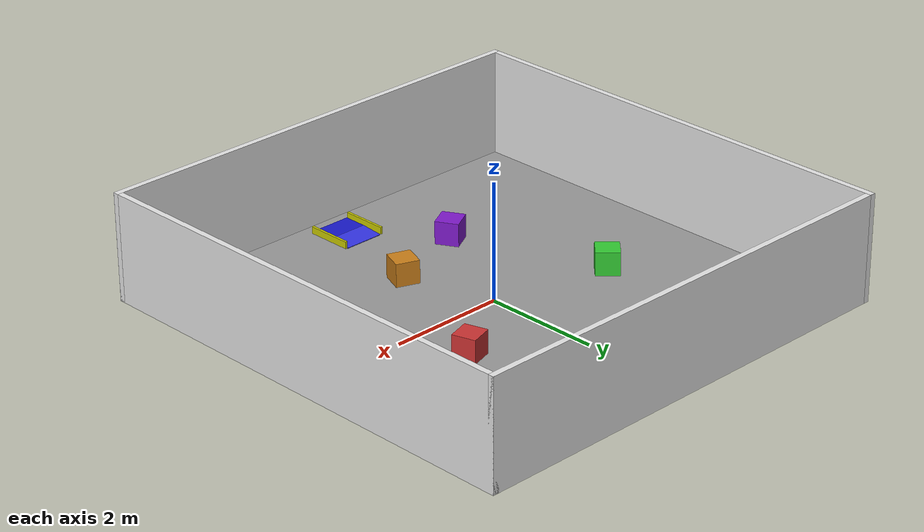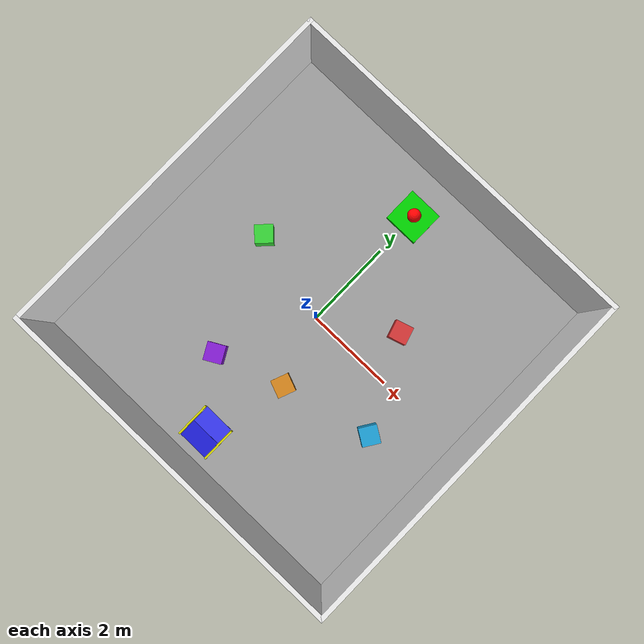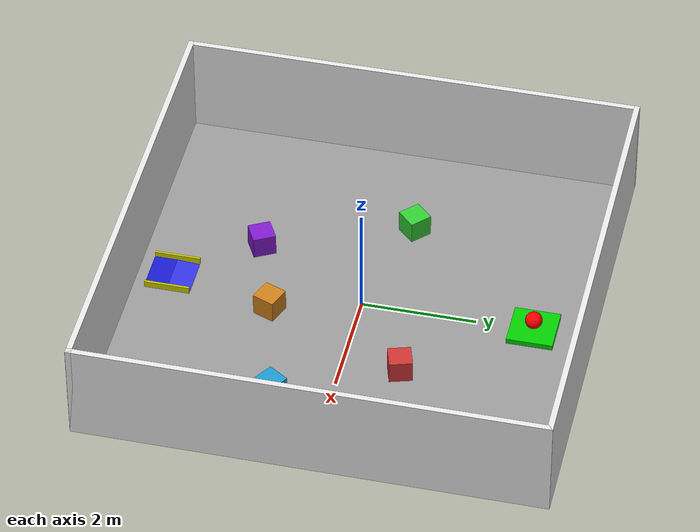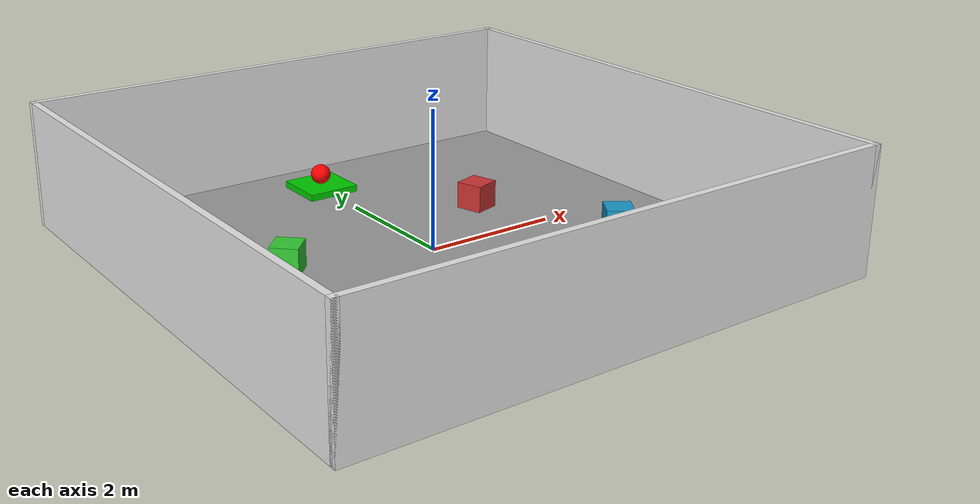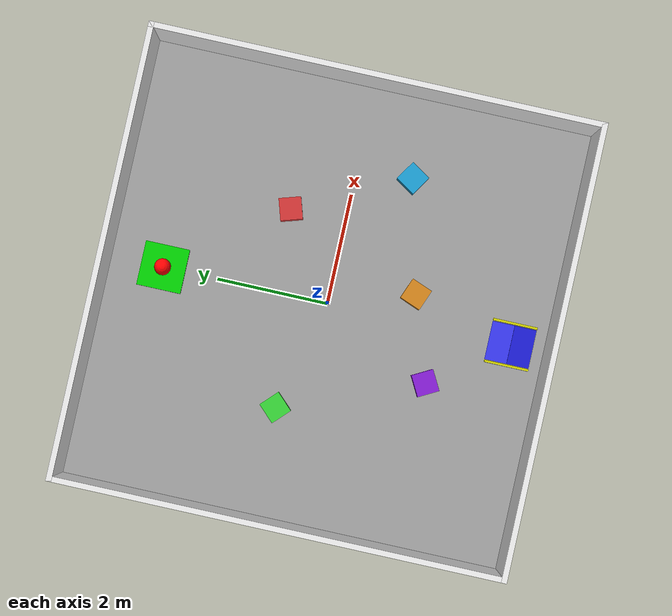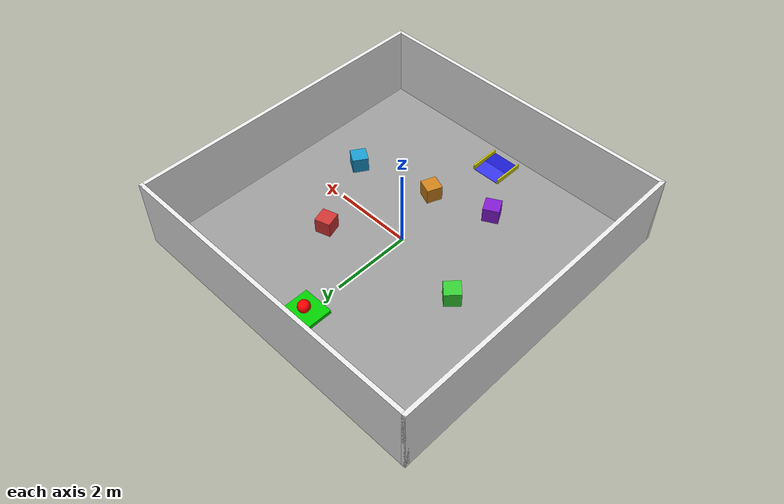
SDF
<?xml version="1.0"?>
<sdf version="1.10">
  <world name="test_world">

    <plugin filename="gz-sim-physics-system"
            name="gz::sim::systems::Physics"/>
    <plugin filename="gz-sim-user-commands-system"
            name="gz::sim::systems::UserCommands"/>
    <plugin filename="gz-sim-scene-broadcaster-system"
            name="gz::sim::systems::SceneBroadcaster"/>
    <plugin filename="gz-sim-sensors-system"
            name="gz::sim::systems::Sensors">
                 <render_engine>ogre2</render_engine>
    </plugin>
    <plugin filename="gz-sim-imu-system"
            name="gz::sim::systems::Imu"/>

    <scene>
      <ambient>0.4 0.4 0.4 1</ambient>
      <background>0.7 0.7 0.7 1</background>
      <shadows>true</shadows>
    </scene>

    <light name="sun" type="directional">
      <cast_shadows>true</cast_shadows>
      <pose>0 0 10 0 0 0</pose>
      <diffuse>0.8 0.8 0.8 1</diffuse>
      <specular>0.2 0.2 0.2 1</specular>
      <direction>-0.5 0.1 -0.9</direction>
    </light>

    <!-- ======== FLOOR ======== -->
    <model name="floor">
      <static>true</static>
      <link name="link">
        <collision name="col">
          <geometry><plane><normal>0 0 1</normal><size>8 8</size></plane></geometry>
        </collision>
        <visual name="vis">
          <geometry><plane><normal>0 0 1</normal><size>8 8</size></plane></geometry>
          <material><ambient>0.6 0.6 0.6 1</ambient><diffuse>0.6 0.6 0.6 1</diffuse></material>
        </visual>
      </link>
    </model>

    <!-- ======== WALLS ======== -->
    <model name="wall_north">
      <static>true</static><pose>0 4.0 0.915 0 0 0</pose>
      <link name="link">
        <collision name="col"><geometry><box><size>8.1 0.1 1.83</size></box></geometry></collision>
        <visual name="vis"><geometry><box><size>8.1 0.1 1.83</size></box></geometry>
          <material><ambient>0.9 0.9 0.9 1</ambient><diffuse>0.9 0.9 0.9 1</diffuse></material></visual>
      </link>
    </model>

    <model name="wall_south">
      <static>true</static><pose>0 -4.0 0.915 0 0 0</pose>
      <link name="link">
        <collision name="col"><geometry><box><size>8.1 0.1 1.83</size></box></geometry></collision>
        <visual name="vis"><geometry><box><size>8.1 0.1 1.83</size></box></geometry>
          <material><ambient>0.9 0.9 0.9 1</ambient><diffuse>0.9 0.9 0.9 1</diffuse></material></visual>
      </link>
    </model>

    <model name="wall_east">
      <static>true</static><pose>4.0 0 0.915 0 0 0</pose>
      <link name="link">
        <collision name="col"><geometry><box><size>0.1 8.1 1.83</size></box></geometry></collision>
        <visual name="vis"><geometry><box><size>0.1 8.1 1.83</size></box></geometry>
          <material><ambient>0.9 0.9 0.9 1</ambient><diffuse>0.9 0.9 0.9 1</diffuse></material></visual>
      </link>
    </model>

    <model name="wall_west">
      <static>true</static><pose>-4.0 0 0.915 0 0 0</pose>
      <link name="link">
        <collision name="col"><geometry><box><size>0.1 8.1 1.83</size></box></geometry></collision>
        <visual name="vis"><geometry><box><size>0.1 8.1 1.83</size></box></geometry>
          <material><ambient>0.9 0.9 0.9 1</ambient><diffuse>0.9 0.9 0.9 1</diffuse></material></visual>
      </link>
    </model>

    <!-- ======== DOCKING STATION — south wall center ======== -->
    <!-- Flat base platform (thin 3cm) -->
    <model name="dock_base">
      <static>true</static>
      <pose>0 -3.55 0.015 0 0 0</pose>
      <link name="link">
        <collision name="col"><geometry><box><size>0.7 0.4 0.03</size></box></geometry></collision>
        <visual name="vis"><geometry><box><size>0.7 0.4 0.03</size></box></geometry>
          <material><ambient>0.1 0.1 0.8 1</ambient><diffuse>0.1 0.1 0.8 1</diffuse></material></visual>
      </link>
    </model>

    <!-- Ramp approaching from front (tilted box) -->
    <!-- ramp is 0.4m long, rises 0.03m over that length -->
    <!-- angle = atan(0.03/0.4) = ~4.3 degrees = 0.075 rad -->
    <model name="dock_ramp">
      <static>true</static>
      <pose>0 -3.15 0.008 -0.075 0 0</pose>
      <link name="link">
        <collision name="col"><geometry><box><size>0.7 0.4 0.015</size></box></geometry></collision>
        <visual name="vis"><geometry><box><size>0.7 0.4 0.015</size></box></geometry>
          <material><ambient>0.2 0.2 0.9 1</ambient><diffuse>0.2 0.2 0.9 1</diffuse></material></visual>
      </link>
    </model>

    <!-- Left side guide wall -->
    <model name="dock_guide_left">
      <static>true</static>
      <pose>-0.38 -3.35 0.06 0 0 0</pose>
      <link name="link">
        <collision name="col"><geometry><box><size>0.04 0.8 0.12</size></box></geometry></collision>
        <visual name="vis"><geometry><box><size>0.04 0.8 0.12</size></box></geometry>
          <material><ambient>0.8 0.8 0.0 1</ambient><diffuse>0.8 0.8 0.0 1</diffuse></material></visual>
      </link>
    </model>

    <!-- Right side guide wall -->
    <model name="dock_guide_right">
      <static>true</static>
      <pose>0.38 -3.35 0.06 0 0 0</pose>
      <link name="link">
        <collision name="col"><geometry><box><size>0.04 0.8 0.12</size></box></geometry></collision>
        <visual name="vis"><geometry><box><size>0.04 0.8 0.12</size></box></geometry>
          <material><ambient>0.8 0.8 0.0 1</ambient><diffuse>0.8 0.8 0.0 1</diffuse></material></visual>
      </link>
    </model>

    <!-- ======== 5 RANDOM BOXES ======== -->
    <model name="box_1">
      <static>true</static><pose>1.5 1.0 0.2 0 0 0.3</pose>
      <link name="link">
        <collision name="col"><geometry><box><size>0.4 0.4 0.4</size></box></geometry></collision>
        <visual name="vis"><geometry><box><size>0.4 0.4 0.4</size></box></geometry>
          <material><ambient>0.8 0.2 0.2 1</ambient><diffuse>0.8 0.2 0.2 1</diffuse></material></visual>
      </link>
    </model>

    <model name="box_2">
      <static>true</static><pose>-2.0 0.5 0.2 0 0 0.8</pose>
      <link name="link">
        <collision name="col"><geometry><box><size>0.4 0.4 0.4</size></box></geometry></collision>
        <visual name="vis"><geometry><box><size>0.4 0.4 0.4</size></box></geometry>
          <material><ambient>0.2 0.8 0.2 1</ambient><diffuse>0.2 0.8 0.2 1</diffuse></material></visual>
      </link>
    </model>

    <model name="box_3">
      <static>true</static><pose>0.5 -1.5 0.2 0 0 1.2</pose>
      <link name="link">
        <collision name="col"><geometry><box><size>0.4 0.4 0.4</size></box></geometry></collision>
        <visual name="vis"><geometry><box><size>0.4 0.4 0.4</size></box></geometry>
          <material><ambient>0.8 0.5 0.1 1</ambient><diffuse>0.8 0.5 0.1 1</diffuse></material></visual>
      </link>
    </model>

    <model name="box_4">
      <static>true</static><pose>-1.0 -2.0 0.2 0 0 0.5</pose>
      <link name="link">
        <collision name="col"><geometry><box><size>0.4 0.4 0.4</size></box></geometry></collision>
        <visual name="vis"><geometry><box><size>0.4 0.4 0.4</size></box></geometry>
          <material><ambient>0.5 0.1 0.8 1</ambient><diffuse>0.5 0.1 0.8 1</diffuse></material></visual>
      </link>
    </model>

    <model name="box_5">
      <static>true</static><pose>2.5 -1.0 0.2 0 0 1.0</pose>
      <link name="link">
        <collision name="col"><geometry><box><size>0.4 0.4 0.4</size></box></geometry></collision>
        <visual name="vis"><geometry><box><size>0.4 0.4 0.4</size></box></geometry>
          <material><ambient>0.1 0.6 0.8 1</ambient><diffuse>0.1 0.6 0.8 1</diffuse></material></visual>
      </link>
    </model>

    <!-- ======== GOAL — north side, green platform + red ball ======== -->
    <model name="goal_platform">
      <static>true</static><pose>0 3.0 0.05 0 0 0</pose>
      <link name="link">
        <collision name="col"><geometry><box><size>0.8 0.8 0.1</size></box></geometry></collision>
        <visual name="vis"><geometry><box><size>0.8 0.8 0.1</size></box></geometry>
          <material><ambient>0.0 0.8 0.0 1</ambient><diffuse>0.0 0.8 0.0 1</diffuse></material></visual>
      </link>
    </model>

    <model name="target_ball">
      <static>true</static><pose>0 3.0 0.25 0 0 0</pose>
      <link name="link">
        <collision name="col"><geometry><sphere><radius>0.15</radius></sphere></geometry></collision>
        <visual name="vis"><geometry><sphere><radius>0.15</radius></sphere></geometry>
          <material><ambient>1.0 0.0 0.0 1</ambient><diffuse>1.0 0.0 0.0 1</diffuse></material></visual>
      </link>
    </model>

  </world>
</sdf>
